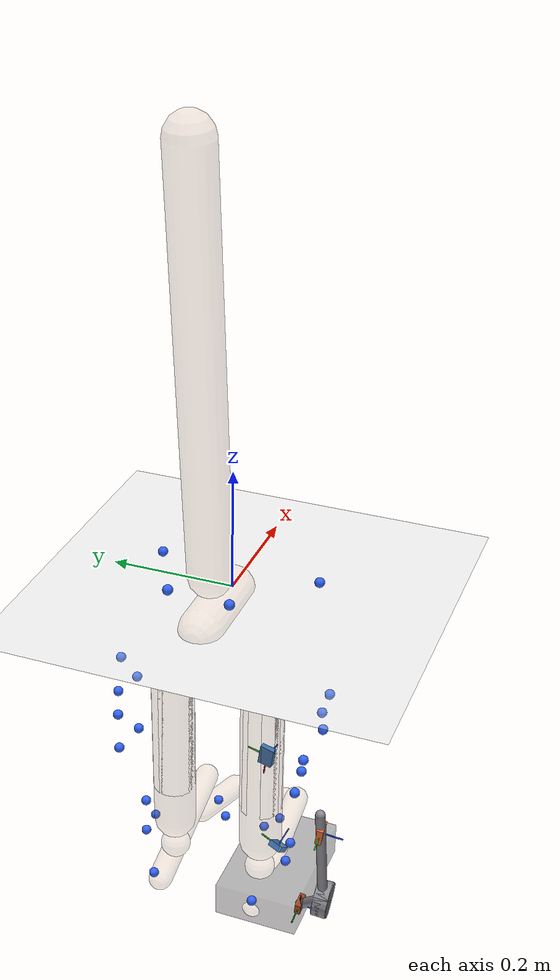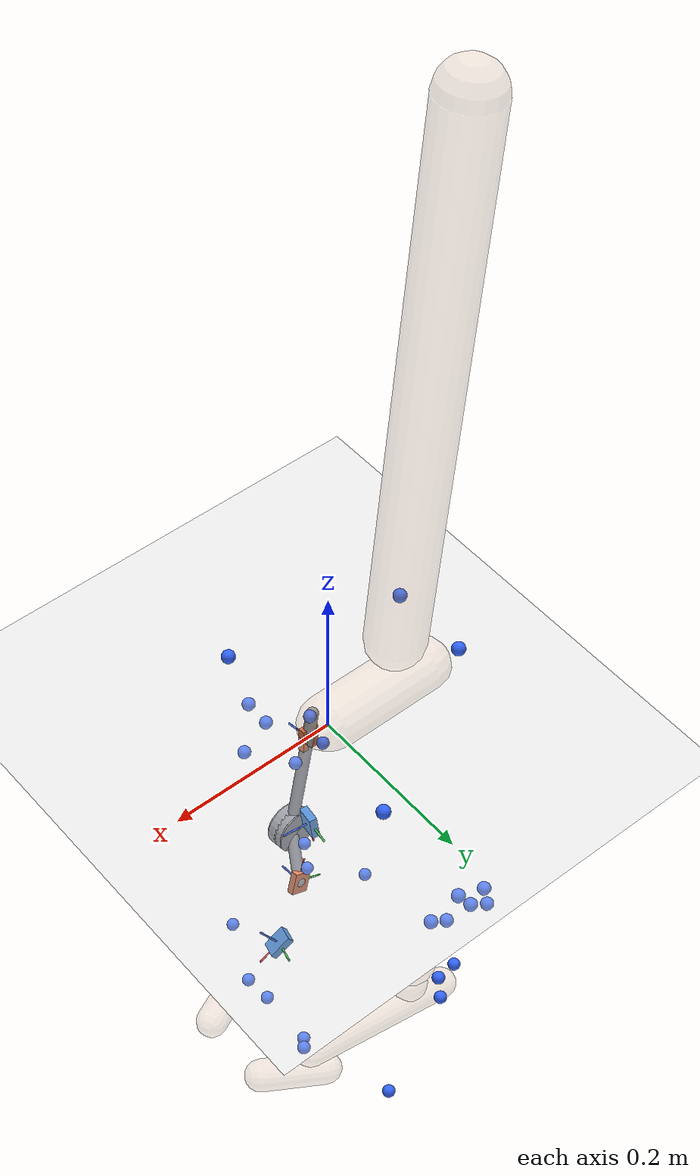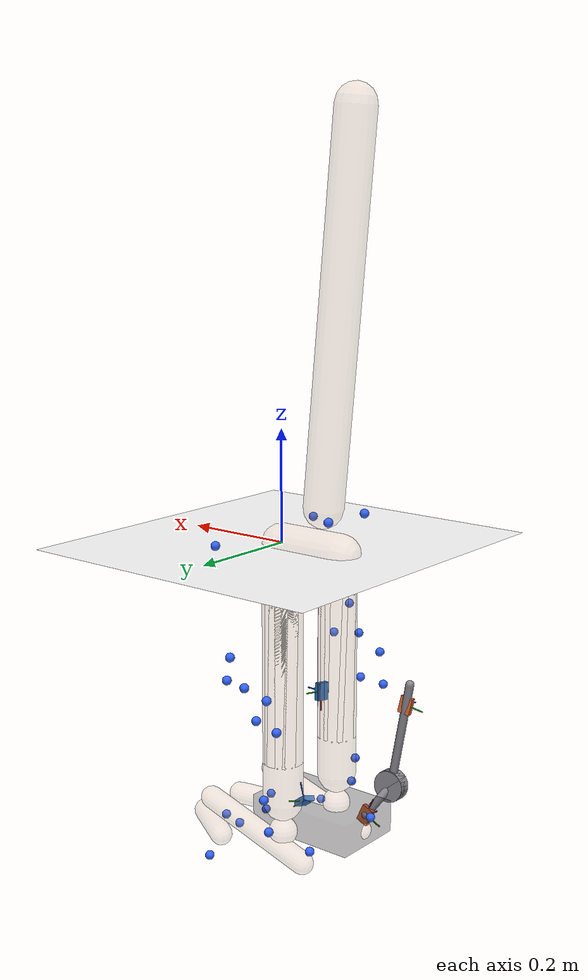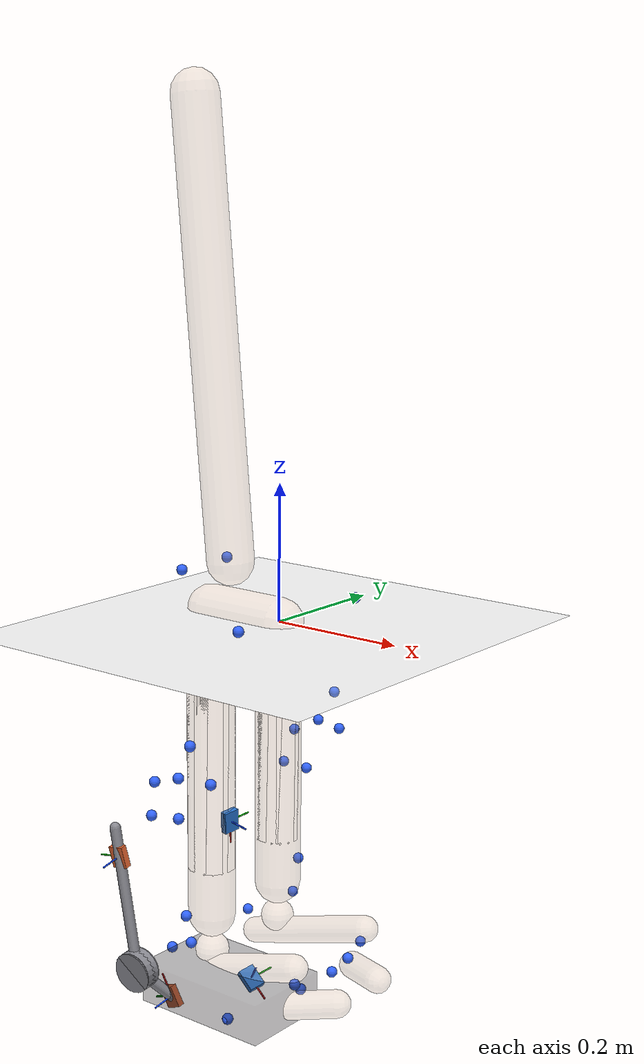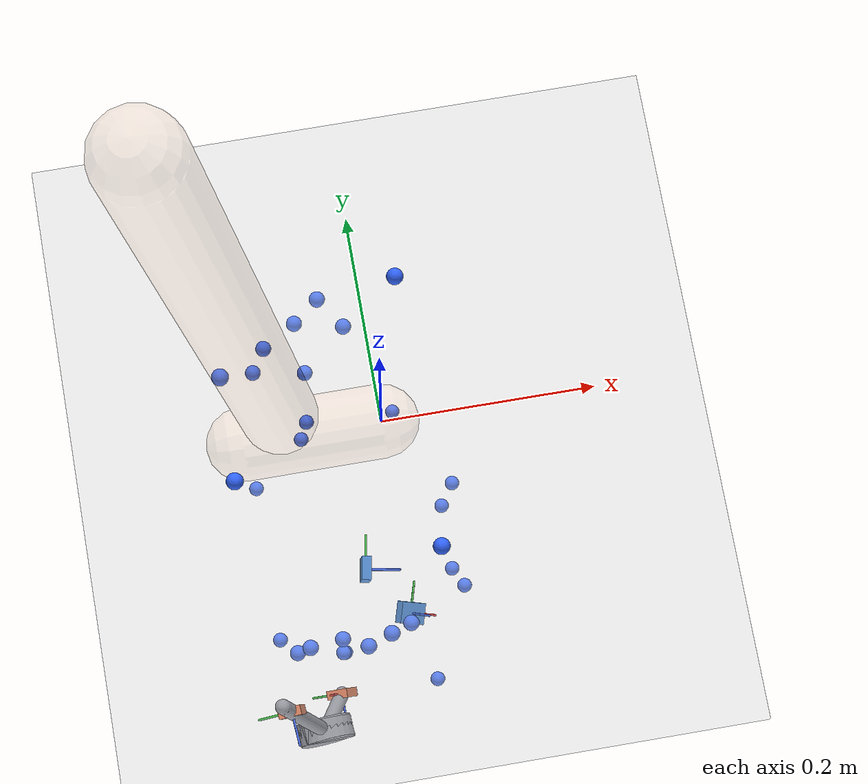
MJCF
<mujoco model="AB19">
  <compiler angle="radian" autolimits="true"/>
  <option timestep="0.005" gravity="0 0 -9.81"><flag contact="disable"/></option>
  <visual><global offwidth="1600" offheight="1200"/>
    <headlight ambient="0.55 0.55 0.55" diffuse="0.6 0.6 0.6"/></visual>
  <default><joint limited="false" damping="0"/><geom contype="0" conaffinity="0"/></default>
  <asset>
    <texture name="grid" type="2d" builtin="checker" rgb1="0.75 0.77 0.8" rgb2="0.85 0.87 0.9" width="512" height="512"/>
    <material name="grid" texture="grid" texrepeat="2 2" texuniform="true"/>
    <material name="skin" rgba="0.85 0.72 0.62 0.28"/>
  </asset>
  <worldbody>
    <light pos="0 0 4" dir="0 0 -1"/>
    <geom name="floor" type="plane" size="0 0 0.05" material="grid"/>
    <body name="pelvis" pos="0 0 0" quat="1 0 0 0">
      <joint name="pelvis_tx" type="slide" axis="1 0 0"/>
      <joint name="pelvis_ty" type="slide" axis="0 0 1"/>
      <joint name="pelvis_tz" type="slide" axis="0 -1 0"/>
      <joint name="pelvis_tilt" type="hinge" axis="0 -1 0"/>
      <joint name="pelvis_list" type="hinge" axis="1 0 0"/>
      <joint name="pelvis_rotation" type="hinge" axis="0 0 1"/>
      <inertial pos="-0.064373962 0 0" mass="10.2542" diaginertia="0.10254237 0.10254237 0.10254237"/>
      <geom type="capsule" fromto="0 0 0 -0.12874792 0 0" size="0.035" material="skin" mass="0"/>
      <site name="m_R_ASIS" pos="0.033279544 -0.12984209 0.018454462" size="0.008" rgba="0.2 0.4 1 1" group="2"/>
      <site name="m_L_ASIS" pos="0.035159373 0.1322283 0.01470486" size="0.008" rgba="0.2 0.4 1 1" group="2"/>
      <site name="m_L_PSIS" pos="-0.13928102 0.047597597 0.065081224" size="0.008" rgba="0.2 0.4 1 1" group="2"/>
      <site name="m_R_PSIS" pos="-0.14102666 -0.04979097 0.063485343" size="0.008" rgba="0.2 0.4 1 1" group="2"/>
      <body name="femur_r" pos="-0.064373962 -0.076028654 -0.060185557" quat="1 0 0 0">
        <joint name="hip_flexion_r" type="hinge" axis="0 -1 0"/>
        <joint name="hip_adduction_r" type="hinge" axis="1 0 0"/>
        <joint name="hip_rotation_r" type="hinge" axis="0 0 1"/>
        <inertial pos="0 0 -0.15154355" mass="8.09873" diaginertia="0.080987311 0.080987311 0.080987311"/>
        <geom type="capsule" fromto="0 0 0 0 0 -0.30308709" size="0.035" material="skin" mass="0"/>
        <site name="m_R_Thigh_Upper" pos="0.044159109 -0.094148765 -0.085306942" size="0.008" rgba="0.2 0.4 1 1" group="2"/>
        <site name="m_R_Thigh_Front" pos="0.066221252 -0.076530917 -0.14097858" size="0.008" rgba="0.2 0.4 1 1" group="2"/>
        <site name="m_R_Thigh_Rear" pos="0.020940276 -0.092986613 -0.13763296" size="0.008" rgba="0.2 0.4 1 1" group="2"/>
        <site name="m_R_Knee_Lat" pos="-0.0028341827 -0.053184587 -0.36401773" size="0.008" rgba="0.2 0.4 1 1" group="2"/>
        <body name="tibia_r" pos="0 0 0" quat="1 0 0 0">
<geom name="gt_shank_axis_x" type="capsule" size="0.0012" fromto="0.03260 0.00270 -0.22600 0.03059 0.00694 -0.26068" rgba="1 0.1 0.1 1" contype="0" conaffinity="0" mass="0"/>
<geom name="gt_shank_axis_y" type="capsule" size="0.0012" fromto="0.03260 0.00270 -0.22600 0.03841 0.03700 -0.22214" rgba="0.1 0.8 0.1 1" contype="0" conaffinity="0" mass="0"/>
<geom name="gt_shank_axis_z" type="capsule" size="0.0012" fromto="0.03260 0.00270 -0.22600 0.06706 -0.00283 -0.22868" rgba="0.1 0.3 1 1" contype="0" conaffinity="0" mass="0"/>
<geom name="exo_shank_axis_x" type="capsule" size="0.0012" fromto="-0.06615 -0.12309 -0.26667 -0.07138 -0.12842 -0.23247" rgba="1 0.1 0.1 1" contype="0" conaffinity="0" mass="0"/>
<geom name="exo_shank_axis_y" type="capsule" size="0.0012" fromto="-0.06615 -0.12309 -0.26667 -0.10066 -0.12481 -0.27222" rgba="0.1 0.8 0.1 1" contype="0" conaffinity="0" mass="0"/>
<geom name="exo_shank_axis_z" type="capsule" size="0.0012" fromto="-0.06615 -0.12309 -0.26667 -0.06362 -0.15764 -0.27166" rgba="0.1 0.3 1 1" contype="0" conaffinity="0" mass="0"/>
<geom name="encoder_shank" type="cylinder" size="0.03 0.012" fromto="-0.03488 -0.13424 -0.43326 -0.03692 -0.11036 -0.43194" rgba="0.55 0.55 0.58 1" contype="0" conaffinity="0" mass="0"/>
<geom name="strut_shank" type="capsule" size="0.008" fromto="-0.03590 -0.12230 -0.43260 -0.07371 -0.12329 -0.22518" rgba="0.55 0.55 0.58 1" contype="0" conaffinity="0" mass="0"/>
          <joint name="knee_r_translation1" type="slide" axis="1 0 0"/>
          <joint name="knee_r_translation2" type="slide" axis="0 0 1"/>
          <joint name="knee_angle_r" type="hinge" axis="0 -1 0"/>
          <inertial pos="0 0 -0.1878434" mass="3.22812" diaginertia="0.032281211 0.032281211 0.032281211"/>
          <geom type="capsule" fromto="0 0 0 0 0 -0.3756868" size="0.035" material="skin" mass="0"/>
          <site name="m_R_Shank_Upper" pos="-0.035733351 -0.080842375 -0.15935892" size="0.008" rgba="0.2 0.4 1 1" group="2"/>
          <site name="m_R_Shank_Front" pos="-0.002421785 -0.067873807 -0.21085872" size="0.008" rgba="0.2 0.4 1 1" group="2"/>
          <site name="m_R_Shank_Rear" pos="-0.049651474 -0.073248796 -0.21566499" size="0.008" rgba="0.2 0.4 1 1" group="2"/>
          <site name="m_R_Ankle_Lat" pos="-0.00062869923 -0.045222797 -0.40774266" size="0.008" rgba="0.2 0.4 1 1" group="2"/>
          <site name="gt_shank_imu" type="box" size="0.016 0.012 0.005" pos="0.0326 0.0027 -0.226" quat="0.67933262 0.098747772 0.72697021 -0.016443041" rgba="0.16 0.47 0.84 1" group="1"/>
          <site name="exo_shank_imu" type="box" size="0.016 0.012 0.005" pos="-0.066146 -0.123091 -0.266667" quat="-0.40571906 -0.51044157 0.55751018 -0.51383251" rgba="0.92 0.41 0.20 1" group="1"/>
          <body name="talus_r" pos="0 0 -0.43263343" quat="1 0 0 0">
            <joint name="ankle_angle_r" type="hinge" axis="-0.10501355 -0.97912632 -0.17402245"/>
            <inertial pos="0 0 0" mass="0.08707" diaginertia="0.00087070023 0.00087070023 0.00087070023"/>
            <geom type="sphere" size="0.025" material="skin" mass="0"/>
            <body name="calcn_r" pos="-0.04906868 -0.0079685041 -0.042206912" quat="1 0 0 0">
<geom name="gt_foot_axis_x" type="capsule" size="0.0012" fromto="0.12750 0.00320 0.01980 0.15526 0.00004 -0.00128" rgba="1 0.1 0.1 1" contype="0" conaffinity="0" mass="0"/>
<geom name="gt_foot_axis_y" type="capsule" size="0.0012" fromto="0.12750 0.00320 0.01980 0.13718 0.03591 0.02764" rgba="0.1 0.8 0.1 1" contype="0" conaffinity="0" mass="0"/>
<geom name="gt_foot_axis_z" type="capsule" size="0.0012" fromto="0.12750 0.00320 0.01980 0.14649 -0.00885 0.04662" rgba="0.1 0.3 1 1" contype="0" conaffinity="0" mass="0"/>
<geom name="exo_foot_axis_x" type="capsule" size="0.0012" fromto="0.03763 -0.06852 -0.00837 0.02482 -0.07372 0.02379" rgba="1 0.1 0.1 1" contype="0" conaffinity="0" mass="0"/>
<geom name="exo_foot_axis_y" type="capsule" size="0.0012" fromto="0.03763 -0.06852 -0.00837 0.00505 -0.06614 -0.02096" rgba="0.1 0.8 0.1 1" contype="0" conaffinity="0" mass="0"/>
<geom name="exo_foot_axis_z" type="capsule" size="0.0012" fromto="0.03763 -0.06852 -0.00837 0.03732 -0.10304 -0.01407" rgba="0.1 0.3 1 1" contype="0" conaffinity="0" mass="0"/>
<geom name="encoder_foot" type="cylinder" size="0.03 0.012" fromto="0.01361 -0.12632 0.04093 0.01259 -0.10248 0.04347" rgba="0.55 0.55 0.58 1" contype="0" conaffinity="0" mass="0"/>
<geom name="strut_foot" type="capsule" size="0.008" fromto="0.01310 -0.11440 0.04220 0.03763 -0.06852 -0.00837" rgba="0.55 0.55 0.58 1" contype="0" conaffinity="0" mass="0"/>
<geom name="shoe" type="box" pos="0.09461 -0.00728 0.00178" size="0.10740 0.06946 0.03000" rgba="0.15 0.15 0.18 0.35" contype="0" conaffinity="0" mass="0"/>
              <joint name="subtalar_angle_r" type="hinge" axis="0.78717961 0.12094949 0.60474746"/>
              <inertial pos="0.10451333 0 0.031353999" mass="1.08838" diaginertia="0.010883753 0.010883753 0.010883753"/>
              <geom type="capsule" fromto="0 0 0 0.20902666 0 0.062707998" size="0.02" material="skin" mass="0"/>
              <site name="m_R_Heel" pos="-0.019795018 -0.0038553142 0.027258042" size="0.008" rgba="0.2 0.4 1 1" group="2"/>
              <site name="m_R_Toe_Lat" pos="0.14568201 -0.070168355 -0.0082170482" size="0.008" rgba="0.2 0.4 1 1" group="2"/>
              <site name="m_R_Toe_Med" pos="0.18281093 0.048745272 0.0033205367" size="0.008" rgba="0.2 0.4 1 1" group="2"/>
              <site name="m_R_Toe_Tip" pos="0.192013 0.023268692 0.023091236" size="0.008" rgba="0.2 0.4 1 1" group="2"/>
              <site name="gt_foot_imu" type="box" size="0.016 0.012 0.005" pos="0.1275 0.0032 0.0198" quat="0.93462037 0.15196345 0.30619876 -0.098153934" rgba="0.16 0.47 0.84 1" group="1"/>
              <site name="exo_foot_imu" type="box" size="0.016 0.012 0.005" pos="0.037626 -0.068515 -0.008367" quat="-0.3670003 -0.42704382 0.63180171 -0.53270156" rgba="0.92 0.41 0.20 1" group="1"/>
              <body name="toes_r" pos="0.18686983 -0.001128744 -0.0020902666" quat="1 0 0 0">
                <joint name="mtp_angle_r" type="hinge" axis="-0.5809544 -0.81393611 0"/>
                <inertial pos="0.036161612 0.018289833 0.0062707998" mass="0.188594" diaginertia="0.0018859367 0.0018859367 0.0018859367"/>
                <geom type="capsule" fromto="0 0 0 0.072323224 0.036579666 0.0125416" size="0.02" material="skin" mass="0"/>
              </body>
            </body>
          </body>
        </body>
      </body>
      <body name="femur_l" pos="-0.064373962 0.076028654 -0.060185557" quat="1 0 0 0">
        <joint name="hip_flexion_l" type="hinge" axis="0 -1 0"/>
        <joint name="hip_adduction_l" type="hinge" axis="-1 0 0"/>
        <joint name="hip_rotation_l" type="hinge" axis="0 0 -1"/>
        <inertial pos="0 0 -0.15154355" mass="8.09873" diaginertia="0.080987311 0.080987311 0.080987311"/>
        <geom type="capsule" fromto="0 0 0 0 0 -0.30308709" size="0.035" material="skin" mass="0"/>
        <site name="m_L_Thigh_Upper" pos="0.027652012 0.10247216 -0.094376032" size="0.008" rgba="0.2 0.4 1 1" group="2"/>
        <site name="m_L_Thigh_Front" pos="0.050264706 0.085792778 -0.14391389" size="0.008" rgba="0.2 0.4 1 1" group="2"/>
        <site name="m_L_Thigh_Rear" pos="0.0015499169 0.09700903 -0.14320347" size="0.008" rgba="0.2 0.4 1 1" group="2"/>
        <site name="m_L_Knee_Lat" pos="-0.0010608844 0.052420577 -0.357029" size="0.008" rgba="0.2 0.4 1 1" group="2"/>
        <body name="tibia_l" pos="0 0 0" quat="1 0 0 0">
          <joint name="knee_l_translation1" type="slide" axis="1 0 0"/>
          <joint name="knee_l_translation2" type="slide" axis="0 0 1"/>
          <joint name="knee_angle_l" type="hinge" axis="0 -1 0"/>
          <inertial pos="0 0 -0.1878434" mass="3.22812" diaginertia="0.032281211 0.032281211 0.032281211"/>
          <geom type="capsule" fromto="0 0 0 0 0 -0.3756868" size="0.035" material="skin" mass="0"/>
          <site name="m_L_Shank_Upper" pos="-0.033456271 0.08184309 -0.16185041" size="0.008" rgba="0.2 0.4 1 1" group="2"/>
          <site name="m_L_Shank_Front" pos="0.004588211 0.064262064 -0.21159002" size="0.008" rgba="0.2 0.4 1 1" group="2"/>
          <site name="m_L_Shank_Rear" pos="-0.048451138 0.07473497 -0.21583817" size="0.008" rgba="0.2 0.4 1 1" group="2"/>
          <site name="m_L_Ankle_Lat" pos="-0.0094739581 0.049777133 -0.41401326" size="0.008" rgba="0.2 0.4 1 1" group="2"/>
          <body name="talus_l" pos="0 0 -0.43263343" quat="1 0 0 0">
            <joint name="ankle_angle_l" type="hinge" axis="0.10501355 -0.97912632 0.17402245"/>
            <inertial pos="0 0 0" mass="0.08707" diaginertia="0.00087070023 0.00087070023 0.00087070023"/>
            <geom type="sphere" size="0.025" material="skin" mass="0"/>
            <body name="calcn_l" pos="-0.04906868 0.0079685041 -0.042206912" quat="1 0 0 0">
              <joint name="subtalar_angle_l" type="hinge" axis="-0.78717961 0.12094949 -0.60474746"/>
              <inertial pos="0.10451333 0 0.031353999" mass="1.08838" diaginertia="0.010883753 0.010883753 0.010883753"/>
              <geom type="capsule" fromto="0 0 0 0.20902666 0 0.062707998" size="0.02" material="skin" mass="0"/>
              <site name="m_L_Heel" pos="-0.018870923 0.0027841511 0.028150929" size="0.008" rgba="0.2 0.4 1 1" group="2"/>
              <site name="m_L_Toe_Lat" pos="0.14769191 0.074081155 -0.0027233458" size="0.008" rgba="0.2 0.4 1 1" group="2"/>
              <site name="m_L_Toe_Med" pos="0.18367977 -0.045817921 0.0027748294" size="0.008" rgba="0.2 0.4 1 1" group="2"/>
              <site name="m_L_Toe_Tip" pos="0.19860447 -0.026592206 0.022391172" size="0.008" rgba="0.2 0.4 1 1" group="2"/>
              <body name="toes_l" pos="0.18686983 0.001128744 -0.0020902666" quat="1 0 0 0">
                <joint name="mtp_angle_l" type="hinge" axis="0.5809544 -0.81393611 0"/>
                <inertial pos="0.036161612 -0.018289833 0.0062707998" mass="0.188594" diaginertia="0.0018859367 0.0018859367 0.0018859367"/>
                <geom type="capsule" fromto="0 0 0 0.072323224 -0.036579666 0.0125416" size="0.02" material="skin" mass="0"/>
              </body>
            </body>
          </body>
        </body>
      </body>
      <body name="torso" pos="-0.091689646 0 0.074207608" quat="1 0 0 0">
        <joint name="lumbar_extension" type="hinge" axis="0 -1 0"/>
        <joint name="lumbar_bending" type="hinge" axis="1 0 0"/>
        <joint name="lumbar_rotation" type="hinge" axis="0 0 1"/>
        <inertial pos="-0.030769035 0 0.32820304" mass="29.8098" diaginertia="0.29809816 0.29809816 0.29809816"/>
        <geom type="capsule" fromto="0 0 0 -0.061538071 0 0.65640609" size="0.035" material="skin" mass="0"/>
      </body>
    </body>
  </worldbody>
  <sensor>
<accelerometer name="gt_foot_imu_acc" site="gt_foot_imu"/>
<gyro name="gt_foot_imu_gyr" site="gt_foot_imu"/>
<accelerometer name="exo_foot_imu_acc" site="exo_foot_imu"/>
<gyro name="exo_foot_imu_gyr" site="exo_foot_imu"/>
<accelerometer name="gt_shank_imu_acc" site="gt_shank_imu"/>
<gyro name="gt_shank_imu_gyr" site="gt_shank_imu"/>
<accelerometer name="exo_shank_imu_acc" site="exo_shank_imu"/>
<gyro name="exo_shank_imu_gyr" site="exo_shank_imu"/>
</sensor>
</mujoco>
